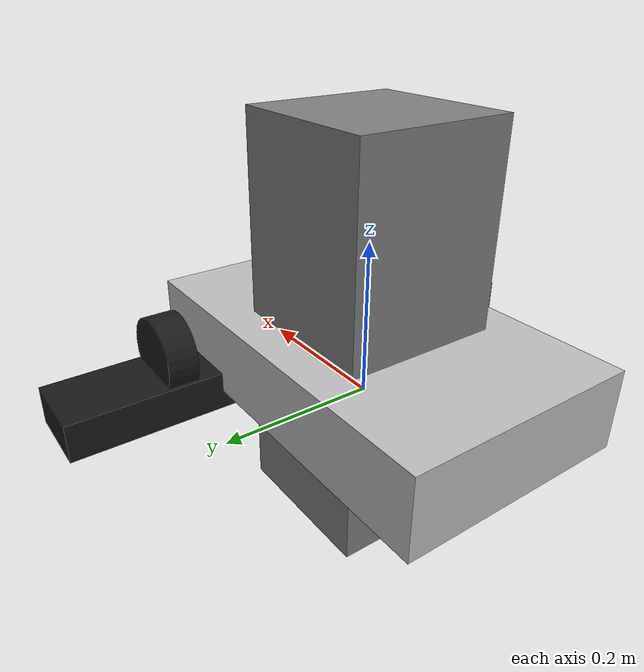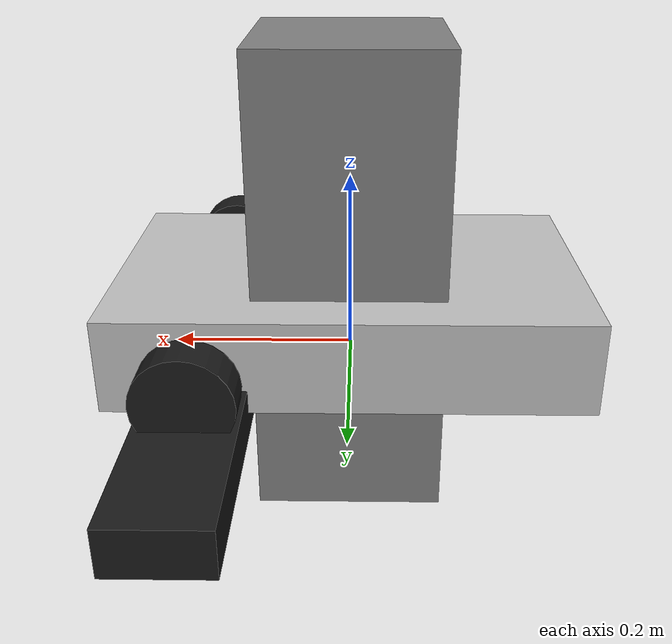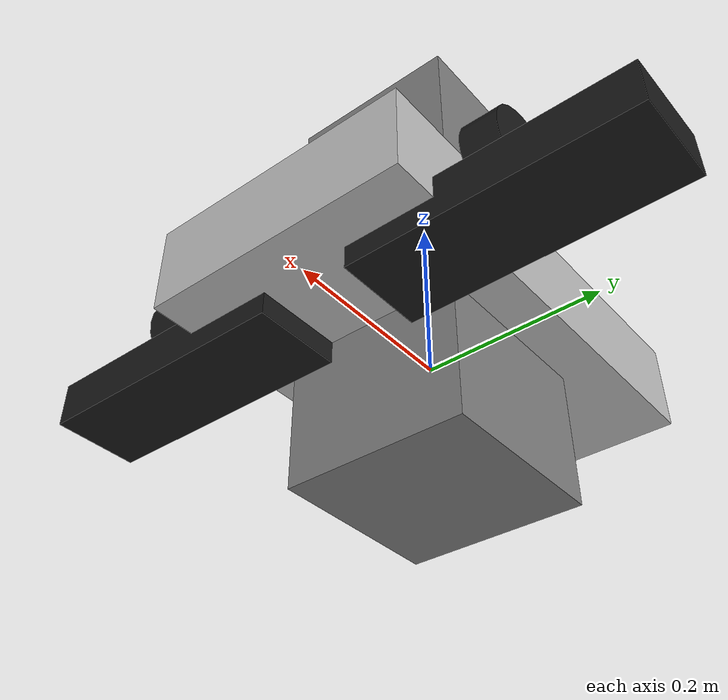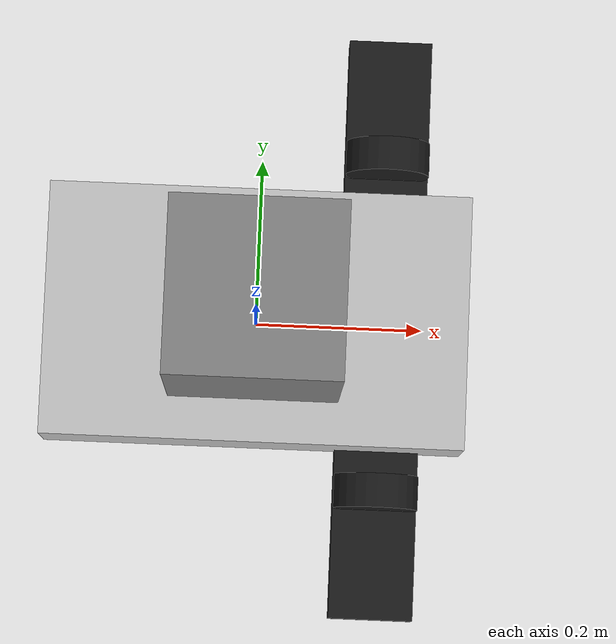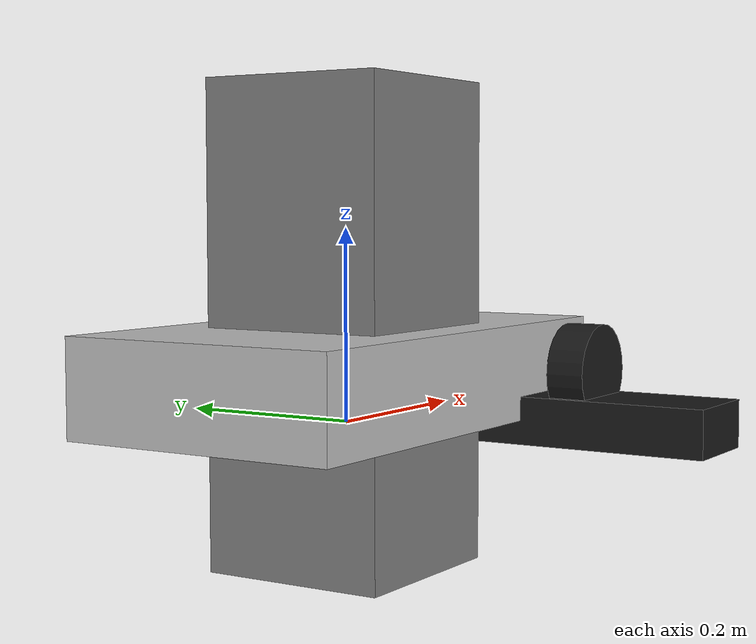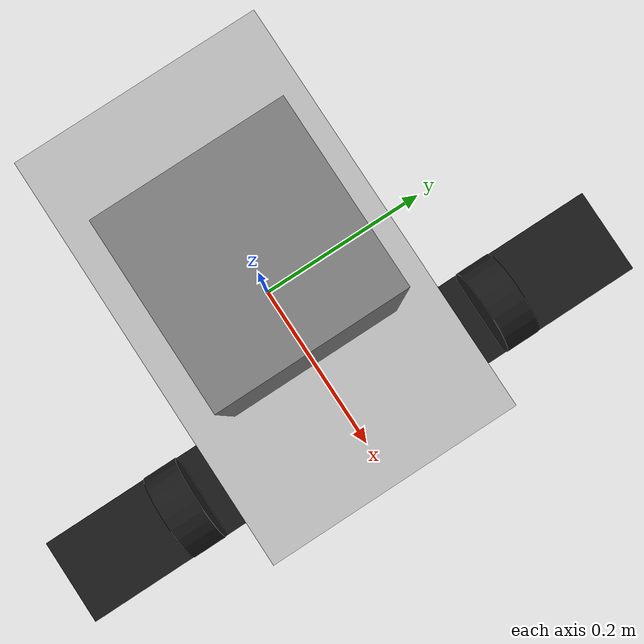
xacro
<?xml version="1.0"?>
<robot xmlns:xacro="http://www.ros.org/wiki/xacro" name="heavy_duty_robot">
  <xacro:include filename="../base_differential_drive.xacro" />
  <xacro:macro name="heavy_duty_robot">
    <xacro:base_differential_drive prefix="" />
    <!-- Material Definitions -->
    <material name="grey">
      <color rgba="0.5 0.5 0.5 1.0" />
    </material>
    <material name="black">
      <color rgba="0.1 0.1 0.1 1.0" />
    </material>
    <!-- Specialized links -->
    <link name="manipulator_base_link">
      <inertial><origin xyz="0 0 0" rpy="0 0 0" /><mass value="5.0" /><inertia ixx="0.01" ixy="0" ixz="0" iyy="0.01" iyz="0" izz="0.01" /></inertial>
      <visual><origin xyz="0 0 0" rpy="0 0 0" /><geometry><box size="0.2 0.2 0.5" /></geometry><material name="grey" /></visual>
      <collision><origin xyz="0 0 0" rpy="0 0 0" /><geometry><box size="0.2 0.2 0.5" /></geometry></collision>
    </link>
    <link name="track_left_link">
      <inertial><origin xyz="0 0 0" rpy="0 0 0" /><mass value="2.0" /><inertia ixx="0.005" ixy="0" ixz="0" iyy="0.005" iyz="0" izz="0.005" /></inertial>
      <visual><origin xyz="0 0 0" rpy="0 0 0" /><geometry><box size="0.1 0.3 0.05" /></geometry><material name="black" /></visual>
      <collision><origin xyz="0 0 0" rpy="0 0 0" /><geometry><box size="0.1 0.3 0.05" /></geometry></collision>
    </link>
    <link name="track_right_link">
      <inertial><origin xyz="0 0 0" rpy="0 0 0" /><mass value="2.0" /><inertia ixx="0.005" ixy="0" ixz="0" iyy="0.005" iyz="0" izz="0.005" /></inertial>
      <visual><origin xyz="0 0 0" rpy="0 0 0" /><geometry><box size="0.1 0.3 0.05" /></geometry><material name="black" /></visual>
      <collision><origin xyz="0 0 0" rpy="0 0 0" /><geometry><box size="0.1 0.3 0.05" /></geometry></collision>
    </link>
    <!-- Specialized joints -->
    <joint name="manipulator_base_joint" type="fixed">
      <parent link="base_link" />
      <child link="manipulator_base_link" />
      <origin xyz="0 0 0.1" rpy="0 0 0" />
    </joint>
    <joint name="track_left_joint" type="fixed">
      <parent link="base_link" />
      <child link="track_left_link" />
      <origin xyz="0.15 0.2 0" rpy="0 0 0" />
    </joint>
    <joint name="track_right_joint" type="fixed">
      <parent link="base_link" />
      <child link="track_right_link" />
      <origin xyz="0.15 -0.2 0" rpy="0 0 0" />
    </joint>
    <!-- Gazebo plugins (adjust for tracks) -->
    <gazebo>
      <plugin filename="ign-gazebo-diff-drive-system" name="ignition::gazebo::systems::DiffDrive">
        <left_joint>track_left_joint</left_joint>
        <right_joint>track_right_joint</right_joint>
        <wheel_separation>0.4</wheel_separation>
        <wheel_radius>0.1</wheel_radius>
        <odom_publish_frequency>10</odom_publish_frequency>
        <topic>/cmd_vel</topic>
      </plugin>
    </gazebo>
  </xacro:macro>
  <xacro:heavy_duty_robot />
</robot>

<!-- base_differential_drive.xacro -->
<robot xmlns:xacro="http://www.ros.org/wiki/xacro">
  <xacro:macro name="base_differential_drive" params="prefix">
    <!-- Robot Properties -->
    <xacro:property name="base_length" value="0.5" />
    <xacro:property name="base_width" value="0.3" />
    <xacro:property name="base_height" value="0.1" />
    <xacro:property name="wheel_radius" value="0.05" />
    <xacro:property name="wheel_width" value="0.04" />
    <xacro:property name="wheel_ygap" value="0.2" />
    <xacro:property name="wheel_xoff" value="0.15" />
    <xacro:property name="wheel_zoff" value="0.05" />
    <xacro:property name="caster_radius" value="0.025" />
    <xacro:property name="caster_xoff" value="-0.15" />

    <!-- Base Link -->
    <link name="${prefix}base_link">
      <inertial>
        <origin xyz="0 0 ${base_height/2}" rpy="0 0 0" />
        <mass value="5.0" />
        <inertia ixx="0.1" ixy="0" ixz="0" iyy="0.1" iyz="0" izz="0.1" />
      </inertial>
      <visual>
        <origin xyz="0 0 ${base_height/2}" rpy="0 0 0" />
        <geometry>
          <box size="${base_length} ${base_width} ${base_height}" />
        </geometry>
        <material name="silver">
          <color rgba="0.75 0.75 0.75 1.0" />
        </material>
      </visual>
      <collision>
        <origin xyz="0 0 ${base_height/2}" rpy="0 0 0" />
        <geometry>
          <box size="${base_length} ${base_width} ${base_height}" />
        </geometry>
      </collision>
    </link>

    <!-- Left Wheel -->
    <link name="${prefix}left_wheel">
      <inertial>
        <origin xyz="0 0 0" rpy="${pi/2} 0 0" />
        <mass value="0.5" />
        <inertia ixx="0.001" ixy="0" ixz="0" iyy="0.001" iyz="0" izz="0.001" />
      </inertial>
      <visual>
        <origin xyz="0 0 0" rpy="${pi/2} 0 0" />
        <geometry>
          <cylinder radius="${wheel_radius}" length="${wheel_width}" />
        </geometry>
        <material name="black">
          <color rgba="0.1 0.1 0.1 1.0" />
        </material>
      </visual>
      <collision>
        <origin xyz="0 0 0" rpy="${pi/2} 0 0" />
        <geometry>
          <cylinder radius="${wheel_radius}" length="${wheel_width}" />
        </geometry>
      </collision>
    </link>

    <!-- Left Wheel Joint -->
    <joint name="${prefix}left_wheel_joint" type="continuous">
      <parent link="${prefix}base_link" />
      <child link="${prefix}left_wheel" />
      <origin xyz="${wheel_xoff} ${wheel_ygap} ${wheel_zoff}" rpy="0 0 0" />
      <axis xyz="0 1 0" />
      <dynamics damping="0.1" friction="0.1" />
    </joint>

    <!-- Right Wheel -->
    <link name="${prefix}right_wheel">
      <inertial>
        <origin xyz="0 0 0" rpy="${pi/2} 0 0" />
        <mass value="0.5" />
        <inertia ixx="0.001" ixy="0" ixz="0" iyy="0.001" iyz="0" izz="0.001" />
      </inertial>
      <visual>
        <origin xyz="0 0 0" rpy="${pi/2} 0 0" />
        <geometry>
          <cylinder radius="${wheel_radius}" length="${wheel_width}" />
        </geometry>
        <material name="black">
          <color rgba="0.1 0.1 0.1 1.0" />
        </material>
      </visual>
      <collision>
        <origin xyz="0 0 0" rpy="${pi/2} 0 0" />
        <geometry>
          <cylinder radius="${wheel_radius}" length="${wheel_width}" />
        </geometry>
      </collision>
    </link>

    <!-- Right Wheel Joint -->
    <joint name="${prefix}right_wheel_joint" type="continuous">
      <parent link="${prefix}base_link" />
      <child link="${prefix}right_wheel" />
      <origin xyz="${wheel_xoff} -${wheel_ygap} ${wheel_zoff}" rpy="0 0 0" />
      <axis xyz="0 1 0" />
      <dynamics damping="0.1" friction="0.1" />
    </joint>

    <!-- Caster Wheel -->
    <link name="${prefix}caster">
      <inertial>
        <origin xyz="0 0 0" rpy="0 0 0" />
        <mass value="0.1" />
        <inertia ixx="0.0001" ixy="0" ixz="0" iyy="0.0001" iyz="0" izz="0.0001" />
      </inertial>
      <visual>
        <origin xyz="0 0 0" rpy="0 0 0" />
        <geometry>
          <sphere radius="${caster_radius}" />
        </geometry>
        <material name="black">
          <color rgba="0.1 0.1 0.1 1.0" />
        </material>
      </visual>
      <collision>
        <origin xyz="0 0 0" rpy="0 0 0" />
        <geometry>
          <sphere radius="${caster_radius}" />
        </geometry>
      </collision>
    </link>

    <!-- Caster Joint -->
    <joint name="${prefix}caster_joint" type="fixed">
      <parent link="${prefix}base_link" />
      <child link="${prefix}caster" />
      <origin xyz="${caster_xoff} 0 ${caster_radius}" rpy="0 0 0" />
    </joint>

    <!-- Gazebo Differential Drive Plugin -->
    <gazebo>
      <plugin filename="ign-gazebo-diff-drive-system" name="ignition::gazebo::systems::DiffDrive">
        <left_joint>${prefix}left_wheel_joint</left_joint>
        <right_joint>${prefix}right_wheel_joint</right_joint>
        <wheel_separation>${2 * wheel_ygap}</wheel_separation>
        <wheel_radius>${wheel_radius}</wheel_radius>
        <odom_publish_frequency>10</odom_publish_frequency>
        <topic>/cmd_vel</topic>
        <frame_id>odom</frame_id>
        <child_frame_id>${prefix}base_link</child_frame_id>
      </plugin>
    </gazebo>
  </xacro:macro>
</robot>
